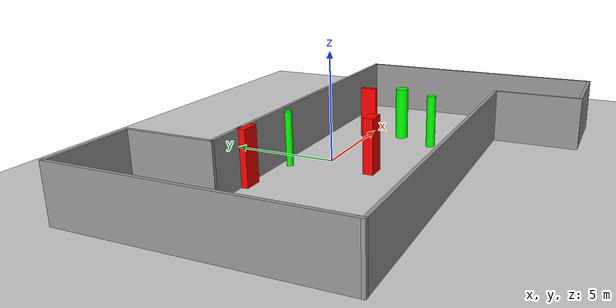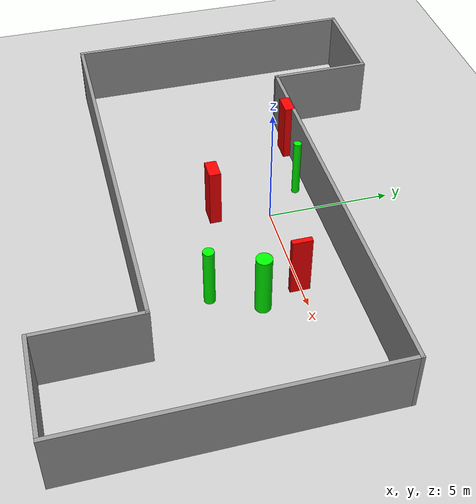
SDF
<sdf version="1.7">
 <world name="default">
  <light name="sun" type="directional">
   <pose>0 0 10 0 -0 0</pose>
   <diffuse>0.8 0.8 0.8 1</diffuse>
   <specular>0.2 0.2 0.2 1</specular>
   <attenuation>
    <range>1000</range>
    <constant>0.9</constant>
    <linear>0.01</linear>
    <quadratic>0.001</quadratic>
   </attenuation>
   <direction>-0.5 0.1 -0.9</direction>
   <spot><inner_angle>0</inner_angle><outer_angle>0</outer_angle><falloff>0</falloff></spot>
  </light>
  <model name="ground_plane">
   <static>1</static>
   <link name="link">
    <collision name="collision">
     <geometry><plane><normal>0 0 1</normal><size>100 100</size></plane></geometry>
     <surface>
      <contact><collide_bitmask>65535</collide_bitmask></contact>
      <friction><ode><mu>100</mu><mu2>50</mu2></ode></friction>
     </surface>
    </collision>
    <visual name="visual">
     <cast_shadows>0</cast_shadows>
     <geometry><plane><normal>0 0 1</normal><size>100 100</size></plane></geometry>
     <material>
      <script><uri>file://media/materials/scripts/gazebo.material</uri><name>Gazebo/Grey</name></script>
     </material>
    </visual>
   </link>
  </model>
  <gravity>0 0 -9.8</gravity>
  <magnetic_field>6e-06 2.3e-05 -4.2e-05</magnetic_field>
  <atmosphere type="adiabatic"/>
  <physics type="ode">
   <max_step_size>0.001</max_step_size>
   <real_time_factor>1</real_time_factor>
   <real_time_update_rate>1000</real_time_update_rate>
  </physics>
  <scene><ambient>0.4 0.4 0.4 1</ambient><background>0.7 0.7 0.7 1</background><shadows>1</shadows></scene>
  <spherical_coordinates>
   <surface_model>EARTH_WGS84</surface_model>
   <latitude_deg>0</latitude_deg>
   <longitude_deg>0</longitude_deg>
   <elevation>0</elevation>
   <heading_deg>0</heading_deg>
  </spherical_coordinates>
  <model name="my_base_walls">
   <link name="Wall_13">
    <collision name="Wall_13_Collision">
     <geometry><box><size>12.15 0.15 2.5</size></box></geometry>
     <pose>0 0 1.25 0 -0 0</pose>
    </collision>
    <visual name="Wall_13_Visual">
     <pose>0 0 1.25 0 -0 0</pose>
     <geometry><box><size>12.15 0.15 2.5</size></box></geometry>
     <material>
      <script><uri>file://media/materials/scripts/gazebo.material</uri><name>Gazebo/Grey</name></script>
      <ambient>1 1 1 1</ambient>
     </material>
     <meta><layer>0</layer></meta>
    </visual>
    <pose>10 -2 0 0 -0 1.5708</pose>
   </link>
   <link name="Wall_15">
    <collision name="Wall_15_Collision">
     <geometry><box><size>16.15 0.15 2.5</size></box></geometry>
     <pose>0 0 1.25 0 -0 0</pose>
    </collision>
    <visual name="Wall_15_Visual">
     <pose>0 0 1.25 0 -0 0</pose>
     <geometry><box><size>16.15 0.15 2.5</size></box></geometry>
     <material>
      <script><uri>file://media/materials/scripts/gazebo.material</uri><name>Gazebo/Grey</name></script>
      <ambient>1 1 1 1</ambient>
     </material>
     <meta><layer>0</layer></meta>
    </visual>
    <pose>2 4 0 0 -0 3.14159</pose>
   </link>
   <link name="Wall_17">
    <collision name="Wall_17_Collision">
     <geometry><box><size>4.15 0.15 2.5</size></box></geometry>
     <pose>0 0 1.25 0 -0 0</pose>
    </collision>
    <visual name="Wall_17_Visual">
     <pose>0 0 1.25 0 -0 0</pose>
     <geometry><box><size>4.15 0.15 2.5</size></box></geometry>
     <material>
      <script><uri>file://media/materials/scripts/gazebo.material</uri><name>Gazebo/Grey</name></script>
      <ambient>1 1 1 1</ambient>
     </material>
     <meta><layer>0</layer></meta>
    </visual>
    <pose>6 -6 0 0 -0 -1.5708</pose>
   </link>
   <link name="Wall_19">
    <collision name="Wall_19_Collision">
     <geometry><box><size>12.15 0.15 2.5</size></box></geometry>
     <pose>0 0 1.25 0 -0 0</pose>
    </collision>
    <visual name="Wall_19_Visual">
     <pose>0 0 1.25 0 -0 0</pose>
     <geometry><box><size>12.15 0.15 2.5</size></box></geometry>
     <material>
      <script><uri>file://media/materials/scripts/gazebo.material</uri><name>Gazebo/Grey</name></script>
      <ambient>1 1 1 1</ambient>
     </material>
     <meta><layer>0</layer></meta>
    </visual>
    <pose>-10 2 0 0 -0 1.5708</pose>
   </link>
   <link name="Wall_21">
    <collision name="Wall_21_Collision">
     <geometry><box><size>4.15 0.15 2.5</size></box></geometry>
     <pose>0 0 1.25 0 -0 0</pose>
    </collision>
    <visual name="Wall_21_Visual">
     <pose>0 0 1.25 0 -0 0</pose>
     <geometry><box><size>4.15 0.15 2.5</size></box></geometry>
     <material>
      <script><uri>file://media/materials/scripts/gazebo.material</uri><name>Gazebo/Grey</name></script>
      <ambient>1 1 1 1</ambient>
     </material>
     <meta><layer>0</layer></meta>
    </visual>
    <pose>-8 8 0 0 -0 0</pose>
   </link>
   <link name="Wall_23">
    <collision name="Wall_23_Collision">
     <geometry><box><size>4.15 0.15 2.5</size></box></geometry>
     <pose>0 0 1.25 0 -0 0</pose>
    </collision>
    <visual name="Wall_23_Visual">
     <pose>0 0 1.25 0 -0 0</pose>
     <geometry><box><size>4.15 0.15 2.5</size></box></geometry>
     <material>
      <script><uri>file://media/materials/scripts/gazebo.material</uri><name>Gazebo/Grey</name></script>
      <ambient>1 1 1 1</ambient>
     </material>
     <meta><layer>0</layer></meta>
    </visual>
    <pose>-6 6 0 0 -0 -1.5708</pose>
   </link>
   <link name="Wall_25">
    <collision name="Wall_25_Collision">
     <geometry><box><size>4.15 0.15 2.5</size></box></geometry>
     <pose>0 0 1.25 0 -0 0</pose>
    </collision>
    <visual name="Wall_25_Visual">
     <pose>0 0 1.25 0 -0 0</pose>
     <geometry><box><size>4.15 0.15 2.5</size></box></geometry>
     <material>
      <script><uri>file://media/materials/scripts/gazebo.material</uri><name>Gazebo/Grey</name></script>
      <ambient>1 1 1 1</ambient>
     </material>
     <meta><layer>0</layer></meta>
    </visual>
    <pose>8 -8 0 0 -0 0</pose>
   </link>
   <link name="Wall_9">
    <collision name="Wall_9_Collision">
     <geometry><box><size>16.15 0.15 2.5</size></box></geometry>
     <pose>0 0 1.25 0 -0 0</pose>
    </collision>
    <visual name="Wall_9_Visual">
     <pose>0 0 1.25 0 -0 0</pose>
     <geometry><box><size>16.15 0.15 2.5</size></box></geometry>
     <material>
      <script><uri>file://media/materials/scripts/gazebo.material</uri><name>Gazebo/Grey</name></script>
      <ambient>1 1 1 1</ambient>
     </material>
     <meta><layer>0</layer></meta>
    </visual>
    <pose>-2 -4 0 0 -0 3.14159</pose>
   </link>
   <static>1</static>
   <pose>-0 -2 0 0 -0 0</pose>
  </model>
  <model name="cylinder1">
   <static>1</static>
   <link name="link">
    <inertial>
     <mass>1</mass>
     <inertia><ixx>0.5</ixx><ixy>0</ixy><ixz>0</ixz><iyy>0.5</iyy><iyz>0</iyz><izz>1</izz></inertia>
    </inertial>
    <collision name="collision">
     <geometry><cylinder><radius>0.15850568619737088</radius><length>2.5</length></cylinder></geometry>
    </collision>
    <visual name="visual">
     <geometry><cylinder><radius>0.15850568619737088</radius><length>2.5</length></cylinder></geometry>
     <material>
      <ambient>0 1 0 1</ambient>
      <diffuse>0 1 0 1</diffuse>
      <specular>0.1 0.1 0.1 1</specular>
      <emissive>0 0 0 0</emissive>
     </material>
    </visual>
   </link>
   <pose>-1.2421635061167908 1.4603753289662427 1.25 0 0 0</pose>
  </model>
  <model name="cylinder2">
   <static>1</static>
   <link name="link">
    <inertial>
     <mass>1</mass>
     <inertia><ixx>0.5</ixx><ixy>0</ixy><ixz>0</ixz><iyy>0.5</iyy><iyz>0</iyz><izz>1</izz></inertia>
    </inertial>
    <collision name="collision">
     <geometry><cylinder><radius>0.3065801600053939</radius><length>2.5</length></cylinder></geometry>
    </collision>
    <visual name="visual">
     <geometry><cylinder><radius>0.3065801600053939</radius><length>2.5</length></cylinder></geometry>
     <material>
      <ambient>0 1 0 1</ambient>
      <diffuse>0 1 0 1</diffuse>
      <specular>0.1 0.1 0.1 1</specular>
      <emissive>0 0 0 0</emissive>
     </material>
    </visual>
   </link>
   <pose>4.640953981801415 -1.6219593158602974 1.25 0 0 0</pose>
  </model>
  <model name="cylinder3">
   <static>1</static>
   <link name="link">
    <inertial>
     <mass>1</mass>
     <inertia><ixx>0.5</ixx><ixy>0</ixy><ixz>0</ixz><iyy>0.5</iyy><iyz>0</iyz><izz>1</izz></inertia>
    </inertial>
    <collision name="collision">
     <geometry><cylinder><radius>0.2142471530768894</radius><length>2.5</length></cylinder></geometry>
    </collision>
    <visual name="visual">
     <geometry><cylinder><radius>0.2142471530768894</radius><length>2.5</length></cylinder></geometry>
     <material>
      <ambient>0 1 0 1</ambient>
      <diffuse>0 1 0 1</diffuse>
      <specular>0.1 0.1 0.1 1</specular>
      <emissive>0 0 0 0</emissive>
     </material>
    </visual>
   </link>
   <pose>3.8079256596893654 -3.4206737466738133 1.25 0 0 0</pose>
  </model>
  <model name="box1">
   <static>1</static>
   <link name="link">
    <inertial>
     <mass>1</mass>
     <inertia><ixx>0.083</ixx><ixy>0</ixy><ixz>0</ixz><iyy>0.083</iyy><iyz>0</iyz><izz>0.083</izz></inertia>
    </inertial>
    <collision name="collision">
     <geometry><box><size>0.841815900931919 0.41735591018029505 2.5</size></box></geometry>
    </collision>
    <visual name="visual">
     <geometry><box><size>0.841815900931919 0.41735591018029505 2.5</size></box></geometry>
     <material>
      <ambient>1 0 0 1</ambient>
      <diffuse>1 0 0 1</diffuse>
      <specular>0.1 0.1 0.1 1</specular>
      <emissive>0 0 0 0</emissive>
     </material>
    </visual>
    <sensor name="my_contact" type="contact">
     <contact><collision>box_collision</collision><topic>__default_topic__</topic></contact>
    </sensor>
   </link>
   <pose>-3.929511342951094 1.838780300007758 1.25 0 0 0</pose>
  </model>
  <model name="box2">
   <static>1</static>
   <link name="link">
    <inertial>
     <mass>1</mass>
     <inertia><ixx>0.083</ixx><ixy>0</ixy><ixz>0</ixz><iyy>0.083</iyy><iyz>0</iyz><izz>0.083</izz></inertia>
    </inertial>
    <collision name="collision">
     <geometry><box><size>0.2102536260055369 0.7779038356423359 2.5</size></box></geometry>
    </collision>
    <visual name="visual">
     <geometry><box><size>0.2102536260055369 0.7779038356423359 2.5</size></box></geometry>
     <material>
      <ambient>1 0 0 1</ambient>
      <diffuse>1 0 0 1</diffuse>
      <specular>0.1 0.1 0.1 1</specular>
      <emissive>0 0 0 0</emissive>
     </material>
    </visual>
    <sensor name="my_contact" type="contact">
     <contact><collision>box_collision</collision><topic>__default_topic__</topic></contact>
    </sensor>
   </link>
   <pose>4.10458609747884 -0.06645631677068486 1.25 0 0 0</pose>
  </model>
  <model name="box3">
   <static>1</static>
   <link name="link">
    <inertial>
     <mass>1</mass>
     <inertia><ixx>0.083</ixx><ixy>0</ixy><ixz>0</ixz><iyy>0.083</iyy><iyz>0</iyz><izz>0.083</izz></inertia>
    </inertial>
    <collision name="collision">
     <geometry><box><size>0.8209935150224841 0.4661684168753234 2.5</size></box></geometry>
    </collision>
    <visual name="visual">
     <geometry><box><size>0.8209935150224841 0.4661684168753234 2.5</size></box></geometry>
     <material>
      <ambient>1 0 0 1</ambient>
      <diffuse>1 0 0 1</diffuse>
      <specular>0.1 0.1 0.1 1</specular>
      <emissive>0 0 0 0</emissive>
     </material>
    </visual>
    <sensor name="my_contact" type="contact">
     <contact><collision>box_collision</collision><topic>__default_topic__</topic></contact>
    </sensor>
   </link>
   <pose>-0.5935557243421634 -2.202167647648304 1.25 0 0 0</pose>
  </model>
 </world>
</sdf>
